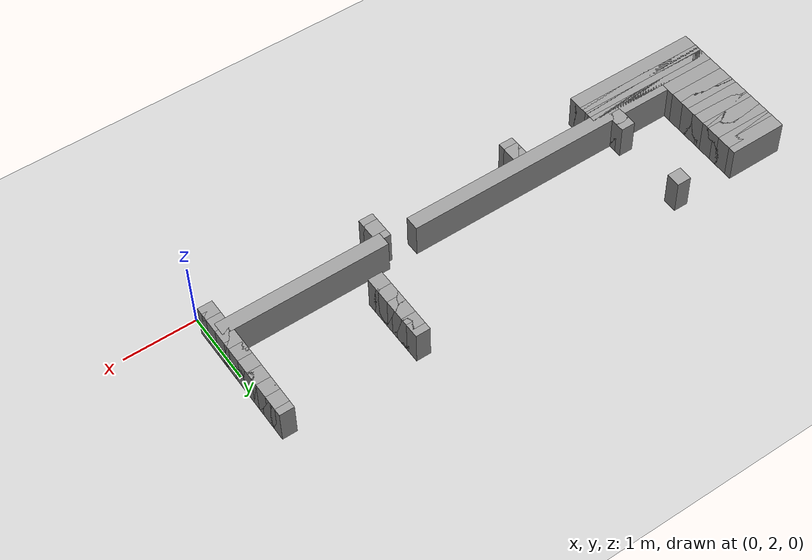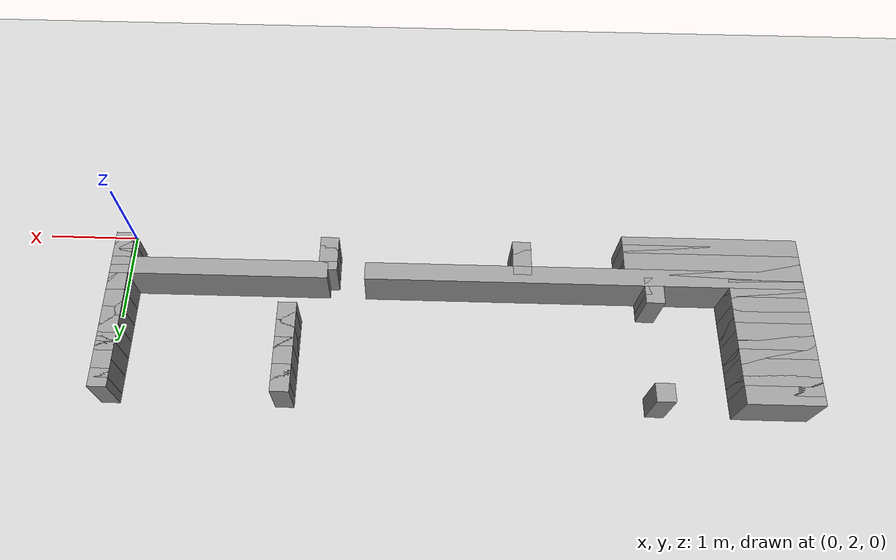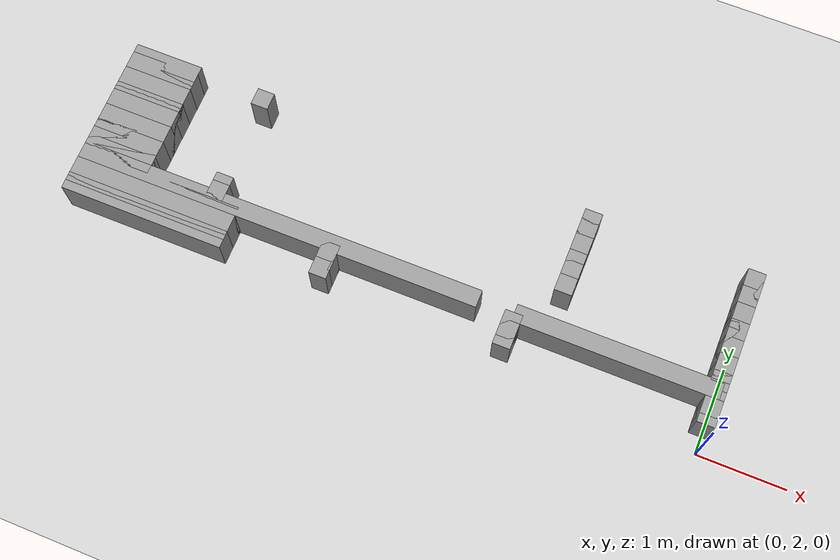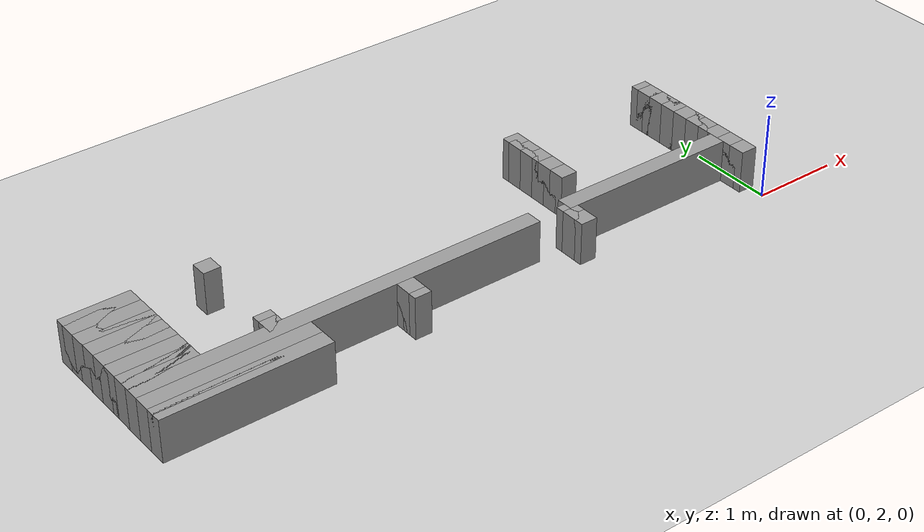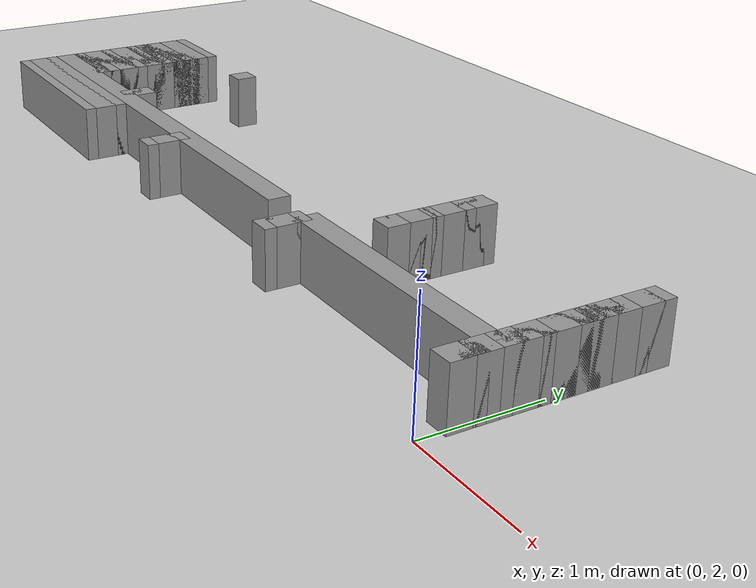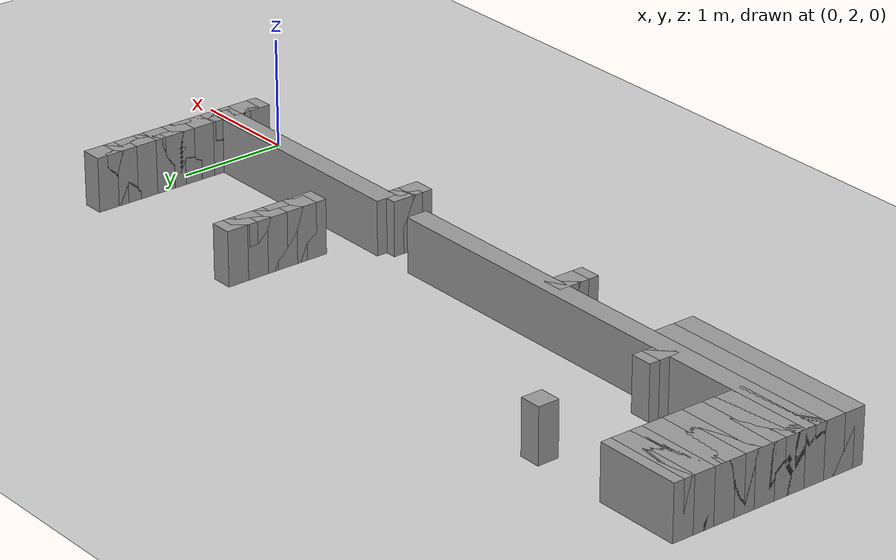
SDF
<sdf version="1.6">
 <world name="GridMap">
  <include><uri>model://sun</uri></include>
  <include><uri>model://ground_plane</uri></include>
  <model name="GridMap">
   <link name="Wall_(64.5,22.0)">
    <collision name="Wall_(64.5,22.0)_Collision">
     <geometry><box><size>1.9000000000000001 0.2 0.5</size></box></geometry>
     <pose>-6.45 2.2 0.25 0 -0 0</pose>
    </collision>
    <inertial>
     <mass>0.5</mass>
     <pose>0 0.01 0 0 0 0</pose>
     <inertia><ixx>0.004</ixx><ixy>0.001</ixy><ixz>0</ixz><iyy>0.006</iyy><iyz>0</iyz><izz>0.007</izz></inertia>
    </inertial>
    <visual name="Wall_(64.5,22.0)_Visual">
     <geometry><box><size>1.9000000000000001 0.2 0.5</size></box></geometry>
     <pose>-6.45 2.2 0.25 0 -0 0</pose>
     <material>
      <script><uri>file://media/materials/scripts/gazebo.material</uri><name>Gazebo/Grey</name></script>
      <ambient>1 1 1 1</ambient>
     </material>
     <meta><layer>0</layer></meta>
    </visual>
   </link>
   <link name="Wall_(0.5,23.0)">
    <collision name="Wall_(0.5,23.0)_Collision">
     <geometry><box><size>0.2 0.2 0.5</size></box></geometry>
     <pose>-0.05 2.3000000000000003 0.25 0 -0 0</pose>
    </collision>
    <inertial>
     <mass>0.5</mass>
     <pose>0 0.01 0 0 0 0</pose>
     <inertia><ixx>0.004</ixx><ixy>0.001</ixy><ixz>0</ixz><iyy>0.006</iyy><iyz>0</iyz><izz>0.007</izz></inertia>
    </inertial>
    <visual name="Wall_(0.5,23.0)_Visual">
     <geometry><box><size>0.2 0.2 0.5</size></box></geometry>
     <pose>-0.05 2.3000000000000003 0.25 0 -0 0</pose>
     <material>
      <script><uri>file://media/materials/scripts/gazebo.material</uri><name>Gazebo/Grey</name></script>
      <ambient>1 1 1 1</ambient>
     </material>
     <meta><layer>0</layer></meta>
    </visual>
   </link>
   <link name="Wall_(23.0,23.0)">
    <collision name="Wall_(23.0,23.0)_Collision">
     <geometry><box><size>0.2 0.2 0.5</size></box></geometry>
     <pose>-2.3000000000000003 2.3000000000000003 0.25 0 -0 0</pose>
    </collision>
    <inertial>
     <mass>0.5</mass>
     <pose>0 0.01 0 0 0 0</pose>
     <inertia><ixx>0.004</ixx><ixy>0.001</ixy><ixz>0</ixz><iyy>0.006</iyy><iyz>0</iyz><izz>0.007</izz></inertia>
    </inertial>
    <visual name="Wall_(23.0,23.0)_Visual">
     <geometry><box><size>0.2 0.2 0.5</size></box></geometry>
     <pose>-2.3000000000000003 2.3000000000000003 0.25 0 -0 0</pose>
     <material>
      <script><uri>file://media/materials/scripts/gazebo.material</uri><name>Gazebo/Grey</name></script>
      <ambient>1 1 1 1</ambient>
     </material>
     <meta><layer>0</layer></meta>
    </visual>
   </link>
   <link name="Wall_(44.0,23.0)">
    <collision name="Wall_(44.0,23.0)_Collision">
     <geometry><box><size>0.2 0.2 0.5</size></box></geometry>
     <pose>-4.4 2.3000000000000003 0.25 0 -0 0</pose>
    </collision>
    <inertial>
     <mass>0.5</mass>
     <pose>0 0.01 0 0 0 0</pose>
     <inertia><ixx>0.004</ixx><ixy>0.001</ixy><ixz>0</ixz><iyy>0.006</iyy><iyz>0</iyz><izz>0.007</izz></inertia>
    </inertial>
    <visual name="Wall_(44.0,23.0)_Visual">
     <geometry><box><size>0.2 0.2 0.5</size></box></geometry>
     <pose>-4.4 2.3000000000000003 0.25 0 -0 0</pose>
     <material>
      <script><uri>file://media/materials/scripts/gazebo.material</uri><name>Gazebo/Grey</name></script>
      <ambient>1 1 1 1</ambient>
     </material>
     <meta><layer>0</layer></meta>
    </visual>
   </link>
   <link name="Wall_(64.5,23.0)">
    <collision name="Wall_(64.5,23.0)_Collision">
     <geometry><box><size>1.9000000000000001 0.2 0.5</size></box></geometry>
     <pose>-6.45 2.3000000000000003 0.25 0 -0 0</pose>
    </collision>
    <inertial>
     <mass>0.5</mass>
     <pose>0 0.01 0 0 0 0</pose>
     <inertia><ixx>0.004</ixx><ixy>0.001</ixy><ixz>0</ixz><iyy>0.006</iyy><iyz>0</iyz><izz>0.007</izz></inertia>
    </inertial>
    <visual name="Wall_(64.5,23.0)_Visual">
     <geometry><box><size>1.9000000000000001 0.2 0.5</size></box></geometry>
     <pose>-6.45 2.3000000000000003 0.25 0 -0 0</pose>
     <material>
      <script><uri>file://media/materials/scripts/gazebo.material</uri><name>Gazebo/Grey</name></script>
      <ambient>1 1 1 1</ambient>
     </material>
     <meta><layer>0</layer></meta>
    </visual>
   </link>
   <link name="Wall_(0.5,24.0)">
    <collision name="Wall_(0.5,24.0)_Collision">
     <geometry><box><size>0.2 0.2 0.5</size></box></geometry>
     <pose>-0.05 2.4000000000000004 0.25 0 -0 0</pose>
    </collision>
    <inertial>
     <mass>0.5</mass>
     <pose>0 0.01 0 0 0 0</pose>
     <inertia><ixx>0.004</ixx><ixy>0.001</ixy><ixz>0</ixz><iyy>0.006</iyy><iyz>0</iyz><izz>0.007</izz></inertia>
    </inertial>
    <visual name="Wall_(0.5,24.0)_Visual">
     <geometry><box><size>0.2 0.2 0.5</size></box></geometry>
     <pose>-0.05 2.4000000000000004 0.25 0 -0 0</pose>
     <material>
      <script><uri>file://media/materials/scripts/gazebo.material</uri><name>Gazebo/Grey</name></script>
      <ambient>1 1 1 1</ambient>
     </material>
     <meta><layer>0</layer></meta>
    </visual>
   </link>
   <link name="Wall_(23.0,24.0)">
    <collision name="Wall_(23.0,24.0)_Collision">
     <geometry><box><size>0.2 0.2 0.5</size></box></geometry>
     <pose>-2.3000000000000003 2.4000000000000004 0.25 0 -0 0</pose>
    </collision>
    <inertial>
     <mass>0.5</mass>
     <pose>0 0.01 0 0 0 0</pose>
     <inertia><ixx>0.004</ixx><ixy>0.001</ixy><ixz>0</ixz><iyy>0.006</iyy><iyz>0</iyz><izz>0.007</izz></inertia>
    </inertial>
    <visual name="Wall_(23.0,24.0)_Visual">
     <geometry><box><size>0.2 0.2 0.5</size></box></geometry>
     <pose>-2.3000000000000003 2.4000000000000004 0.25 0 -0 0</pose>
     <material>
      <script><uri>file://media/materials/scripts/gazebo.material</uri><name>Gazebo/Grey</name></script>
      <ambient>1 1 1 1</ambient>
     </material>
     <meta><layer>0</layer></meta>
    </visual>
   </link>
   <link name="Wall_(44.0,24.0)">
    <collision name="Wall_(44.0,24.0)_Collision">
     <geometry><box><size>0.2 0.2 0.5</size></box></geometry>
     <pose>-4.4 2.4000000000000004 0.25 0 -0 0</pose>
    </collision>
    <inertial>
     <mass>0.5</mass>
     <pose>0 0.01 0 0 0 0</pose>
     <inertia><ixx>0.004</ixx><ixy>0.001</ixy><ixz>0</ixz><iyy>0.006</iyy><iyz>0</iyz><izz>0.007</izz></inertia>
    </inertial>
    <visual name="Wall_(44.0,24.0)_Visual">
     <geometry><box><size>0.2 0.2 0.5</size></box></geometry>
     <pose>-4.4 2.4000000000000004 0.25 0 -0 0</pose>
     <material>
      <script><uri>file://media/materials/scripts/gazebo.material</uri><name>Gazebo/Grey</name></script>
      <ambient>1 1 1 1</ambient>
     </material>
     <meta><layer>0</layer></meta>
    </visual>
   </link>
   <link name="Wall_(64.5,24.0)">
    <collision name="Wall_(64.5,24.0)_Collision">
     <geometry><box><size>1.9000000000000001 0.2 0.5</size></box></geometry>
     <pose>-6.45 2.4000000000000004 0.25 0 -0 0</pose>
    </collision>
    <inertial>
     <mass>0.5</mass>
     <pose>0 0.01 0 0 0 0</pose>
     <inertia><ixx>0.004</ixx><ixy>0.001</ixy><ixz>0</ixz><iyy>0.006</iyy><iyz>0</iyz><izz>0.007</izz></inertia>
    </inertial>
    <visual name="Wall_(64.5,24.0)_Visual">
     <geometry><box><size>1.9000000000000001 0.2 0.5</size></box></geometry>
     <pose>-6.45 2.4000000000000004 0.25 0 -0 0</pose>
     <material>
      <script><uri>file://media/materials/scripts/gazebo.material</uri><name>Gazebo/Grey</name></script>
      <ambient>1 1 1 1</ambient>
     </material>
     <meta><layer>0</layer></meta>
    </visual>
   </link>
   <link name="Wall_(0.5,25.0)">
    <collision name="Wall_(0.5,25.0)_Collision">
     <geometry><box><size>0.2 0.2 0.5</size></box></geometry>
     <pose>-0.05 2.5 0.25 0 -0 0</pose>
    </collision>
    <inertial>
     <mass>0.5</mass>
     <pose>0 0.01 0 0 0 0</pose>
     <inertia><ixx>0.004</ixx><ixy>0.001</ixy><ixz>0</ixz><iyy>0.006</iyy><iyz>0</iyz><izz>0.007</izz></inertia>
    </inertial>
    <visual name="Wall_(0.5,25.0)_Visual">
     <geometry><box><size>0.2 0.2 0.5</size></box></geometry>
     <pose>-0.05 2.5 0.25 0 -0 0</pose>
     <material>
      <script><uri>file://media/materials/scripts/gazebo.material</uri><name>Gazebo/Grey</name></script>
      <ambient>1 1 1 1</ambient>
     </material>
     <meta><layer>0</layer></meta>
    </visual>
   </link>
   <link name="Wall_(23.0,25.0)">
    <collision name="Wall_(23.0,25.0)_Collision">
     <geometry><box><size>0.2 0.2 0.5</size></box></geometry>
     <pose>-2.3000000000000003 2.5 0.25 0 -0 0</pose>
    </collision>
    <inertial>
     <mass>0.5</mass>
     <pose>0 0.01 0 0 0 0</pose>
     <inertia><ixx>0.004</ixx><ixy>0.001</ixy><ixz>0</ixz><iyy>0.006</iyy><iyz>0</iyz><izz>0.007</izz></inertia>
    </inertial>
    <visual name="Wall_(23.0,25.0)_Visual">
     <geometry><box><size>0.2 0.2 0.5</size></box></geometry>
     <pose>-2.3000000000000003 2.5 0.25 0 -0 0</pose>
     <material>
      <script><uri>file://media/materials/scripts/gazebo.material</uri><name>Gazebo/Grey</name></script>
      <ambient>1 1 1 1</ambient>
     </material>
     <meta><layer>0</layer></meta>
    </visual>
   </link>
   <link name="Wall_(44.0,25.0)">
    <collision name="Wall_(44.0,25.0)_Collision">
     <geometry><box><size>0.2 0.2 0.5</size></box></geometry>
     <pose>-4.4 2.5 0.25 0 -0 0</pose>
    </collision>
    <inertial>
     <mass>0.5</mass>
     <pose>0 0.01 0 0 0 0</pose>
     <inertia><ixx>0.004</ixx><ixy>0.001</ixy><ixz>0</ixz><iyy>0.006</iyy><iyz>0</iyz><izz>0.007</izz></inertia>
    </inertial>
    <visual name="Wall_(44.0,25.0)_Visual">
     <geometry><box><size>0.2 0.2 0.5</size></box></geometry>
     <pose>-4.4 2.5 0.25 0 -0 0</pose>
     <material>
      <script><uri>file://media/materials/scripts/gazebo.material</uri><name>Gazebo/Grey</name></script>
      <ambient>1 1 1 1</ambient>
     </material>
     <meta><layer>0</layer></meta>
    </visual>
   </link>
   <link name="Wall_(64.5,25.0)">
    <collision name="Wall_(64.5,25.0)_Collision">
     <geometry><box><size>1.9000000000000001 0.2 0.5</size></box></geometry>
     <pose>-6.45 2.5 0.25 0 -0 0</pose>
    </collision>
    <inertial>
     <mass>0.5</mass>
     <pose>0 0.01 0 0 0 0</pose>
     <inertia><ixx>0.004</ixx><ixy>0.001</ixy><ixz>0</ixz><iyy>0.006</iyy><iyz>0</iyz><izz>0.007</izz></inertia>
    </inertial>
    <visual name="Wall_(64.5,25.0)_Visual">
     <geometry><box><size>1.9000000000000001 0.2 0.5</size></box></geometry>
     <pose>-6.45 2.5 0.25 0 -0 0</pose>
     <material>
      <script><uri>file://media/materials/scripts/gazebo.material</uri><name>Gazebo/Grey</name></script>
      <ambient>1 1 1 1</ambient>
     </material>
     <meta><layer>0</layer></meta>
    </visual>
   </link>
   <link name="Wall_(11.5,26.0)">
    <collision name="Wall_(11.5,26.0)_Collision">
     <geometry><box><size>2.3000000000000003 0.2 0.5</size></box></geometry>
     <pose>-1.1500000000000001 2.6 0.25 0 -0 0</pose>
    </collision>
    <inertial>
     <mass>0.5</mass>
     <pose>0 0.01 0 0 0 0</pose>
     <inertia><ixx>0.004</ixx><ixy>0.001</ixy><ixz>0</ixz><iyy>0.006</iyy><iyz>0</iyz><izz>0.007</izz></inertia>
    </inertial>
    <visual name="Wall_(11.5,26.0)_Visual">
     <geometry><box><size>2.3000000000000003 0.2 0.5</size></box></geometry>
     <pose>-1.1500000000000001 2.6 0.25 0 -0 0</pose>
     <material>
      <script><uri>file://media/materials/scripts/gazebo.material</uri><name>Gazebo/Grey</name></script>
      <ambient>1 1 1 1</ambient>
     </material>
     <meta><layer>0</layer></meta>
    </visual>
   </link>
   <link name="Wall_(50.5,26.0)">
    <collision name="Wall_(50.5,26.0)_Collision">
     <geometry><box><size>4.7 0.2 0.5</size></box></geometry>
     <pose>-5.050000000000001 2.6 0.25 0 -0 0</pose>
    </collision>
    <inertial>
     <mass>0.5</mass>
     <pose>0 0.01 0 0 0 0</pose>
     <inertia><ixx>0.004</ixx><ixy>0.001</ixy><ixz>0</ixz><iyy>0.006</iyy><iyz>0</iyz><izz>0.007</izz></inertia>
    </inertial>
    <visual name="Wall_(50.5,26.0)_Visual">
     <geometry><box><size>4.7 0.2 0.5</size></box></geometry>
     <pose>-5.050000000000001 2.6 0.25 0 -0 0</pose>
     <material>
      <script><uri>file://media/materials/scripts/gazebo.material</uri><name>Gazebo/Grey</name></script>
      <ambient>1 1 1 1</ambient>
     </material>
     <meta><layer>0</layer></meta>
    </visual>
   </link>
   <link name="Wall_(0.5,27.0)">
    <collision name="Wall_(0.5,27.0)_Collision">
     <geometry><box><size>0.2 0.2 0.5</size></box></geometry>
     <pose>-0.05 2.7 0.25 0 -0 0</pose>
    </collision>
    <inertial>
     <mass>0.5</mass>
     <pose>0 0.01 0 0 0 0</pose>
     <inertia><ixx>0.004</ixx><ixy>0.001</ixy><ixz>0</ixz><iyy>0.006</iyy><iyz>0</iyz><izz>0.007</izz></inertia>
    </inertial>
    <visual name="Wall_(0.5,27.0)_Visual">
     <geometry><box><size>0.2 0.2 0.5</size></box></geometry>
     <pose>-0.05 2.7 0.25 0 -0 0</pose>
     <material>
      <script><uri>file://media/materials/scripts/gazebo.material</uri><name>Gazebo/Grey</name></script>
      <ambient>1 1 1 1</ambient>
     </material>
     <meta><layer>0</layer></meta>
    </visual>
   </link>
   <link name="Wall_(58.0,27.0)">
    <collision name="Wall_(58.0,27.0)_Collision">
     <geometry><box><size>0.2 0.2 0.5</size></box></geometry>
     <pose>-5.800000000000001 2.7 0.25 0 -0 0</pose>
    </collision>
    <inertial>
     <mass>0.5</mass>
     <pose>0 0.01 0 0 0 0</pose>
     <inertia><ixx>0.004</ixx><ixy>0.001</ixy><ixz>0</ixz><iyy>0.006</iyy><iyz>0</iyz><izz>0.007</izz></inertia>
    </inertial>
    <visual name="Wall_(58.0,27.0)_Visual">
     <geometry><box><size>0.2 0.2 0.5</size></box></geometry>
     <pose>-5.800000000000001 2.7 0.25 0 -0 0</pose>
     <material>
      <script><uri>file://media/materials/scripts/gazebo.material</uri><name>Gazebo/Grey</name></script>
      <ambient>1 1 1 1</ambient>
     </material>
     <meta><layer>0</layer></meta>
    </visual>
   </link>
   <link name="Wall_(70.0,27.0)">
    <collision name="Wall_(70.0,27.0)_Collision">
     <geometry><box><size>0.8 0.2 0.5</size></box></geometry>
     <pose>-7.0 2.7 0.25 0 -0 0</pose>
    </collision>
    <inertial>
     <mass>0.5</mass>
     <pose>0 0.01 0 0 0 0</pose>
     <inertia><ixx>0.004</ixx><ixy>0.001</ixy><ixz>0</ixz><iyy>0.006</iyy><iyz>0</iyz><izz>0.007</izz></inertia>
    </inertial>
    <visual name="Wall_(70.0,27.0)_Visual">
     <geometry><box><size>0.8 0.2 0.5</size></box></geometry>
     <pose>-7.0 2.7 0.25 0 -0 0</pose>
     <material>
      <script><uri>file://media/materials/scripts/gazebo.material</uri><name>Gazebo/Grey</name></script>
      <ambient>1 1 1 1</ambient>
     </material>
     <meta><layer>0</layer></meta>
    </visual>
   </link>
   <link name="Wall_(0.5,28.0)">
    <collision name="Wall_(0.5,28.0)_Collision">
     <geometry><box><size>0.2 0.2 0.5</size></box></geometry>
     <pose>-0.05 2.8000000000000003 0.25 0 -0 0</pose>
    </collision>
    <inertial>
     <mass>0.5</mass>
     <pose>0 0.01 0 0 0 0</pose>
     <inertia><ixx>0.004</ixx><ixy>0.001</ixy><ixz>0</ixz><iyy>0.006</iyy><iyz>0</iyz><izz>0.007</izz></inertia>
    </inertial>
    <visual name="Wall_(0.5,28.0)_Visual">
     <geometry><box><size>0.2 0.2 0.5</size></box></geometry>
     <pose>-0.05 2.8000000000000003 0.25 0 -0 0</pose>
     <material>
      <script><uri>file://media/materials/scripts/gazebo.material</uri><name>Gazebo/Grey</name></script>
      <ambient>1 1 1 1</ambient>
     </material>
     <meta><layer>0</layer></meta>
    </visual>
   </link>
   <link name="Wall_(58.0,28.0)">
    <collision name="Wall_(58.0,28.0)_Collision">
     <geometry><box><size>0.2 0.2 0.5</size></box></geometry>
     <pose>-5.800000000000001 2.8000000000000003 0.25 0 -0 0</pose>
    </collision>
    <inertial>
     <mass>0.5</mass>
     <pose>0 0.01 0 0 0 0</pose>
     <inertia><ixx>0.004</ixx><ixy>0.001</ixy><ixz>0</ixz><iyy>0.006</iyy><iyz>0</iyz><izz>0.007</izz></inertia>
    </inertial>
    <visual name="Wall_(58.0,28.0)_Visual">
     <geometry><box><size>0.2 0.2 0.5</size></box></geometry>
     <pose>-5.800000000000001 2.8000000000000003 0.25 0 -0 0</pose>
     <material>
      <script><uri>file://media/materials/scripts/gazebo.material</uri><name>Gazebo/Grey</name></script>
      <ambient>1 1 1 1</ambient>
     </material>
     <meta><layer>0</layer></meta>
    </visual>
   </link>
   <link name="Wall_(70.0,28.0)">
    <collision name="Wall_(70.0,28.0)_Collision">
     <geometry><box><size>0.8 0.2 0.5</size></box></geometry>
     <pose>-7.0 2.8000000000000003 0.25 0 -0 0</pose>
    </collision>
    <inertial>
     <mass>0.5</mass>
     <pose>0 0.01 0 0 0 0</pose>
     <inertia><ixx>0.004</ixx><ixy>0.001</ixy><ixz>0</ixz><iyy>0.006</iyy><iyz>0</iyz><izz>0.007</izz></inertia>
    </inertial>
    <visual name="Wall_(70.0,28.0)_Visual">
     <geometry><box><size>0.8 0.2 0.5</size></box></geometry>
     <pose>-7.0 2.8000000000000003 0.25 0 -0 0</pose>
     <material>
      <script><uri>file://media/materials/scripts/gazebo.material</uri><name>Gazebo/Grey</name></script>
      <ambient>1 1 1 1</ambient>
     </material>
     <meta><layer>0</layer></meta>
    </visual>
   </link>
   <link name="Wall_(0.5,29.0)">
    <collision name="Wall_(0.5,29.0)_Collision">
     <geometry><box><size>0.2 0.2 0.5</size></box></geometry>
     <pose>-0.05 2.9000000000000004 0.25 0 -0 0</pose>
    </collision>
    <inertial>
     <mass>0.5</mass>
     <pose>0 0.01 0 0 0 0</pose>
     <inertia><ixx>0.004</ixx><ixy>0.001</ixy><ixz>0</ixz><iyy>0.006</iyy><iyz>0</iyz><izz>0.007</izz></inertia>
    </inertial>
    <visual name="Wall_(0.5,29.0)_Visual">
     <geometry><box><size>0.2 0.2 0.5</size></box></geometry>
     <pose>-0.05 2.9000000000000004 0.25 0 -0 0</pose>
     <material>
      <script><uri>file://media/materials/scripts/gazebo.material</uri><name>Gazebo/Grey</name></script>
      <ambient>1 1 1 1</ambient>
     </material>
     <meta><layer>0</layer></meta>
    </visual>
   </link>
   <link name="Wall_(70.0,29.0)">
    <collision name="Wall_(70.0,29.0)_Collision">
     <geometry><box><size>0.8 0.2 0.5</size></box></geometry>
     <pose>-7.0 2.9000000000000004 0.25 0 -0 0</pose>
    </collision>
    <inertial>
     <mass>0.5</mass>
     <pose>0 0.01 0 0 0 0</pose>
     <inertia><ixx>0.004</ixx><ixy>0.001</ixy><ixz>0</ixz><iyy>0.006</iyy><iyz>0</iyz><izz>0.007</izz></inertia>
    </inertial>
    <visual name="Wall_(70.0,29.0)_Visual">
     <geometry><box><size>0.8 0.2 0.5</size></box></geometry>
     <pose>-7.0 2.9000000000000004 0.25 0 -0 0</pose>
     <material>
      <script><uri>file://media/materials/scripts/gazebo.material</uri><name>Gazebo/Grey</name></script>
      <ambient>1 1 1 1</ambient>
     </material>
     <meta><layer>0</layer></meta>
    </visual>
   </link>
   <link name="Wall_(0.5,30.0)">
    <collision name="Wall_(0.5,30.0)_Collision">
     <geometry><box><size>0.2 0.2 0.5</size></box></geometry>
     <pose>-0.05 3.0 0.25 0 -0 0</pose>
    </collision>
    <inertial>
     <mass>0.5</mass>
     <pose>0 0.01 0 0 0 0</pose>
     <inertia><ixx>0.004</ixx><ixy>0.001</ixy><ixz>0</ixz><iyy>0.006</iyy><iyz>0</iyz><izz>0.007</izz></inertia>
    </inertial>
    <visual name="Wall_(0.5,30.0)_Visual">
     <geometry><box><size>0.2 0.2 0.5</size></box></geometry>
     <pose>-0.05 3.0 0.25 0 -0 0</pose>
     <material>
      <script><uri>file://media/materials/scripts/gazebo.material</uri><name>Gazebo/Grey</name></script>
      <ambient>1 1 1 1</ambient>
     </material>
     <meta><layer>0</layer></meta>
    </visual>
   </link>
   <link name="Wall_(70.0,30.0)">
    <collision name="Wall_(70.0,30.0)_Collision">
     <geometry><box><size>0.8 0.2 0.5</size></box></geometry>
     <pose>-7.0 3.0 0.25 0 -0 0</pose>
    </collision>
    <inertial>
     <mass>0.5</mass>
     <pose>0 0.01 0 0 0 0</pose>
     <inertia><ixx>0.004</ixx><ixy>0.001</ixy><ixz>0</ixz><iyy>0.006</iyy><iyz>0</iyz><izz>0.007</izz></inertia>
    </inertial>
    <visual name="Wall_(70.0,30.0)_Visual">
     <geometry><box><size>0.8 0.2 0.5</size></box></geometry>
     <pose>-7.0 3.0 0.25 0 -0 0</pose>
     <material>
      <script><uri>file://media/materials/scripts/gazebo.material</uri><name>Gazebo/Grey</name></script>
      <ambient>1 1 1 1</ambient>
     </material>
     <meta><layer>0</layer></meta>
    </visual>
   </link>
   <link name="Wall_(0.5,31.0)">
    <collision name="Wall_(0.5,31.0)_Collision">
     <geometry><box><size>0.2 0.2 0.5</size></box></geometry>
     <pose>-0.05 3.1 0.25 0 -0 0</pose>
    </collision>
    <inertial>
     <mass>0.5</mass>
     <pose>0 0.01 0 0 0 0</pose>
     <inertia><ixx>0.004</ixx><ixy>0.001</ixy><ixz>0</ixz><iyy>0.006</iyy><iyz>0</iyz><izz>0.007</izz></inertia>
    </inertial>
    <visual name="Wall_(0.5,31.0)_Visual">
     <geometry><box><size>0.2 0.2 0.5</size></box></geometry>
     <pose>-0.05 3.1 0.25 0 -0 0</pose>
     <material>
      <script><uri>file://media/materials/scripts/gazebo.material</uri><name>Gazebo/Grey</name></script>
      <ambient>1 1 1 1</ambient>
     </material>
     <meta><layer>0</layer></meta>
    </visual>
   </link>
   <link name="Wall_(19.0,31.0)">
    <collision name="Wall_(19.0,31.0)_Collision">
     <geometry><box><size>0.2 0.2 0.5</size></box></geometry>
     <pose>-1.9000000000000001 3.1 0.25 0 -0 0</pose>
    </collision>
    <inertial>
     <mass>0.5</mass>
     <pose>0 0.01 0 0 0 0</pose>
     <inertia><ixx>0.004</ixx><ixy>0.001</ixy><ixz>0</ixz><iyy>0.006</iyy><iyz>0</iyz><izz>0.007</izz></inertia>
    </inertial>
    <visual name="Wall_(19.0,31.0)_Visual">
     <geometry><box><size>0.2 0.2 0.5</size></box></geometry>
     <pose>-1.9000000000000001 3.1 0.25 0 -0 0</pose>
     <material>
      <script><uri>file://media/materials/scripts/gazebo.material</uri><name>Gazebo/Grey</name></script>
      <ambient>1 1 1 1</ambient>
     </material>
     <meta><layer>0</layer></meta>
    </visual>
   </link>
   <link name="Wall_(70.0,31.0)">
    <collision name="Wall_(70.0,31.0)_Collision">
     <geometry><box><size>0.8 0.2 0.5</size></box></geometry>
     <pose>-7.0 3.1 0.25 0 -0 0</pose>
    </collision>
    <inertial>
     <mass>0.5</mass>
     <pose>0 0.01 0 0 0 0</pose>
     <inertia><ixx>0.004</ixx><ixy>0.001</ixy><ixz>0</ixz><iyy>0.006</iyy><iyz>0</iyz><izz>0.007</izz></inertia>
    </inertial>
    <visual name="Wall_(70.0,31.0)_Visual">
     <geometry><box><size>0.8 0.2 0.5</size></box></geometry>
     <pose>-7.0 3.1 0.25 0 -0 0</pose>
     <material>
      <script><uri>file://media/materials/scripts/gazebo.material</uri><name>Gazebo/Grey</name></script>
      <ambient>1 1 1 1</ambient>
     </material>
     <meta><layer>0</layer></meta>
    </visual>
   </link>
   <link name="Wall_(0.5,32.0)">
    <collision name="Wall_(0.5,32.0)_Collision">
     <geometry><box><size>0.2 0.2 0.5</size></box></geometry>
     <pose>-0.05 3.2 0.25 0 -0 0</pose>
    </collision>
    <inertial>
     <mass>0.5</mass>
     <pose>0 0.01 0 0 0 0</pose>
     <inertia><ixx>0.004</ixx><ixy>0.001</ixy><ixz>0</ixz><iyy>0.006</iyy><iyz>0</iyz><izz>0.007</izz></inertia>
    </inertial>
    <visual name="Wall_(0.5,32.0)_Visual">
     <geometry><box><size>0.2 0.2 0.5</size></box></geometry>
     <pose>-0.05 3.2 0.25 0 -0 0</pose>
     <material>
      <script><uri>file://media/materials/scripts/gazebo.material</uri><name>Gazebo/Grey</name></script>
      <ambient>1 1 1 1</ambient>
     </material>
     <meta><layer>0</layer></meta>
    </visual>
   </link>
   <link name="Wall_(19.0,32.0)">
    <collision name="Wall_(19.0,32.0)_Collision">
     <geometry><box><size>0.2 0.2 0.5</size></box></geometry>
     <pose>-1.9000000000000001 3.2 0.25 0 -0 0</pose>
    </collision>
    <inertial>
     <mass>0.5</mass>
     <pose>0 0.01 0 0 0 0</pose>
     <inertia><ixx>0.004</ixx><ixy>0.001</ixy><ixz>0</ixz><iyy>0.006</iyy><iyz>0</iyz><izz>0.007</izz></inertia>
    </inertial>
    <visual name="Wall_(19.0,32.0)_Visual">
     <geometry><box><size>0.2 0.2 0.5</size></box></geometry>
     <pose>-1.9000000000000001 3.2 0.25 0 -0 0</pose>
     <material>
      <script><uri>file://media/materials/scripts/gazebo.material</uri><name>Gazebo/Grey</name></script>
      <ambient>1 1 1 1</ambient>
     </material>
     <meta><layer>0</layer></meta>
    </visual>
   </link>
   <link name="Wall_(70.0,32.0)">
    <collision name="Wall_(70.0,32.0)_Collision">
     <geometry><box><size>0.8 0.2 0.5</size></box></geometry>
     <pose>-7.0 3.2 0.25 0 -0 0</pose>
    </collision>
    <inertial>
     <mass>0.5</mass>
     <pose>0 0.01 0 0 0 0</pose>
     <inertia><ixx>0.004</ixx><ixy>0.001</ixy><ixz>0</ixz><iyy>0.006</iyy><iyz>0</iyz><izz>0.007</izz></inertia>
    </inertial>
    <visual name="Wall_(70.0,32.0)_Visual">
     <geometry><box><size>0.8 0.2 0.5</size></box></geometry>
     <pose>-7.0 3.2 0.25 0 -0 0</pose>
     <material>
      <script><uri>file://media/materials/scripts/gazebo.material</uri><name>Gazebo/Grey</name></script>
      <ambient>1 1 1 1</ambient>
     </material>
     <meta><layer>0</layer></meta>
    </visual>
   </link>
   <link name="Wall_(0.5,33.0)">
    <collision name="Wall_(0.5,33.0)_Collision">
     <geometry><box><size>0.2 0.2 0.5</size></box></geometry>
     <pose>-0.05 3.3000000000000003 0.25 0 -0 0</pose>
    </collision>
    <inertial>
     <mass>0.5</mass>
     <pose>0 0.01 0 0 0 0</pose>
     <inertia><ixx>0.004</ixx><ixy>0.001</ixy><ixz>0</ixz><iyy>0.006</iyy><iyz>0</iyz><izz>0.007</izz></inertia>
    </inertial>
    <visual name="Wall_(0.5,33.0)_Visual">
     <geometry><box><size>0.2 0.2 0.5</size></box></geometry>
     <pose>-0.05 3.3000000000000003 0.25 0 -0 0</pose>
     <material>
      <script><uri>file://media/materials/scripts/gazebo.material</uri><name>Gazebo/Grey</name></script>
      <ambient>1 1 1 1</ambient>
     </material>
     <meta><layer>0</layer></meta>
    </visual>
   </link>
   <link name="Wall_(19.0,33.0)">
    <collision name="Wall_(19.0,33.0)_Collision">
     <geometry><box><size>0.2 0.2 0.5</size></box></geometry>
     <pose>-1.9000000000000001 3.3000000000000003 0.25 0 -0 0</pose>
    </collision>
    <inertial>
     <mass>0.5</mass>
     <pose>0 0.01 0 0 0 0</pose>
     <inertia><ixx>0.004</ixx><ixy>0.001</ixy><ixz>0</ixz><iyy>0.006</iyy><iyz>0</iyz><izz>0.007</izz></inertia>
    </inertial>
    <visual name="Wall_(19.0,33.0)_Visual">
     <geometry><box><size>0.2 0.2 0.5</size></box></geometry>
     <pose>-1.9000000000000001 3.3000000000000003 0.25 0 -0 0</pose>
     <material>
      <script><uri>file://media/materials/scripts/gazebo.material</uri><name>Gazebo/Grey</name></script>
      <ambient>1 1 1 1</ambient>
     </material>
     <meta><layer>0</layer></meta>
    </visual>
   </link>
   <link name="Wall_(70.0,33.0)">
    <collision name="Wall_(70.0,33.0)_Collision">
     <geometry><box><size>0.8 0.2 0.5</size></box></geometry>
     <pose>-7.0 3.3000000000000003 0.25 0 -0 0</pose>
    </collision>
    <inertial>
     <mass>0.5</mass>
     <pose>0 0.01 0 0 0 0</pose>
     <inertia><ixx>0.004</ixx><ixy>0.001</ixy><ixz>0</ixz><iyy>0.006</iyy><iyz>0</iyz><izz>0.007</izz></inertia>
    </inertial>
    <visual name="Wall_(70.0,33.0)_Visual">
     <geometry><box><size>0.8 0.2 0.5</size></box></geometry>
     <pose>-7.0 3.3000000000000003 0.25 0 -0 0</pose>
     <material>
      <script><uri>file://media/materials/scripts/gazebo.material</uri><name>Gazebo/Grey</name></script>
      <ambient>1 1 1 1</ambient>
     </material>
     <meta><layer>0</layer></meta>
    </visual>
   </link>
   <link name="Wall_(0.5,34.0)">
    <collision name="Wall_(0.5,34.0)_Collision">
     <geometry><box><size>0.2 0.2 0.5</size></box></geometry>
     <pose>-0.05 3.4000000000000004 0.25 0 -0 0</pose>
    </collision>
    <inertial>
     <mass>0.5</mass>
     <pose>0 0.01 0 0 0 0</pose>
     <inertia><ixx>0.004</ixx><ixy>0.001</ixy><ixz>0</ixz><iyy>0.006</iyy><iyz>0</iyz><izz>0.007</izz></inertia>
    </inertial>
    <visual name="Wall_(0.5,34.0)_Visual">
     <geometry><box><size>0.2 0.2 0.5</size></box></geometry>
     <pose>-0.05 3.4000000000000004 0.25 0 -0 0</pose>
     <material>
      <script><uri>file://media/materials/scripts/gazebo.material</uri><name>Gazebo/Grey</name></script>
      <ambient>1 1 1 1</ambient>
     </material>
     <meta><layer>0</layer></meta>
    </visual>
   </link>
   <link name="Wall_(19.0,34.0)">
    <collision name="Wall_(19.0,34.0)_Collision">
     <geometry><box><size>0.2 0.2 0.5</size></box></geometry>
     <pose>-1.9000000000000001 3.4000000000000004 0.25 0 -0 0</pose>
    </collision>
    <inertial>
     <mass>0.5</mass>
     <pose>0 0.01 0 0 0 0</pose>
     <inertia><ixx>0.004</ixx><ixy>0.001</ixy><ixz>0</ixz><iyy>0.006</iyy><iyz>0</iyz><izz>0.007</izz></inertia>
    </inertial>
    <visual name="Wall_(19.0,34.0)_Visual">
     <geometry><box><size>0.2 0.2 0.5</size></box></geometry>
     <pose>-1.9000000000000001 3.4000000000000004 0.25 0 -0 0</pose>
     <material>
      <script><uri>file://media/materials/scripts/gazebo.material</uri><name>Gazebo/Grey</name></script>
      <ambient>1 1 1 1</ambient>
     </material>
     <meta><layer>0</layer></meta>
    </visual>
   </link>
   <link name="Wall_(70.0,34.0)">
    <collision name="Wall_(70.0,34.0)_Collision">
     <geometry><box><size>0.8 0.2 0.5</size></box></geometry>
     <pose>-7.0 3.4000000000000004 0.25 0 -0 0</pose>
    </collision>
    <inertial>
     <mass>0.5</mass>
     <pose>0 0.01 0 0 0 0</pose>
     <inertia><ixx>0.004</ixx><ixy>0.001</ixy><ixz>0</ixz><iyy>0.006</iyy><iyz>0</iyz><izz>0.007</izz></inertia>
    </inertial>
    <visual name="Wall_(70.0,34.0)_Visual">
     <geometry><box><size>0.8 0.2 0.5</size></box></geometry>
     <pose>-7.0 3.4000000000000004 0.25 0 -0 0</pose>
     <material>
      <script><uri>file://media/materials/scripts/gazebo.material</uri><name>Gazebo/Grey</name></script>
      <ambient>1 1 1 1</ambient>
     </material>
     <meta><layer>0</layer></meta>
    </visual>
   </link>
   <link name="Wall_(0.5,35.0)">
    <collision name="Wall_(0.5,35.0)_Collision">
     <geometry><box><size>0.2 0.2 0.5</size></box></geometry>
     <pose>-0.05 3.5 0.25 0 -0 0</pose>
    </collision>
    <inertial>
     <mass>0.5</mass>
     <pose>0 0.01 0 0 0 0</pose>
     <inertia><ixx>0.004</ixx><ixy>0.001</ixy><ixz>0</ixz><iyy>0.006</iyy><iyz>0</iyz><izz>0.007</izz></inertia>
    </inertial>
    <visual name="Wall_(0.5,35.0)_Visual">
     <geometry><box><size>0.2 0.2 0.5</size></box></geometry>
     <pose>-0.05 3.5 0.25 0 -0 0</pose>
     <material>
      <script><uri>file://media/materials/scripts/gazebo.material</uri><name>Gazebo/Grey</name></script>
      <ambient>1 1 1 1</ambient>
     </material>
     <meta><layer>0</layer></meta>
    </visual>
   </link>
   <link name="Wall_(19.0,35.0)">
    <collision name="Wall_(19.0,35.0)_Collision">
     <geometry><box><size>0.2 0.2 0.5</size></box></geometry>
     <pose>-1.9000000000000001 3.5 0.25 0 -0 0</pose>
    </collision>
    <inertial>
     <mass>0.5</mass>
     <pose>0 0.01 0 0 0 0</pose>
     <inertia><ixx>0.004</ixx><ixy>0.001</ixy><ixz>0</ixz><iyy>0.006</iyy><iyz>0</iyz><izz>0.007</izz></inertia>
    </inertial>
    <visual name="Wall_(19.0,35.0)_Visual">
     <geometry><box><size>0.2 0.2 0.5</size></box></geometry>
     <pose>-1.9000000000000001 3.5 0.25 0 -0 0</pose>
     <material>
      <script><uri>file://media/materials/scripts/gazebo.material</uri><name>Gazebo/Grey</name></script>
      <ambient>1 1 1 1</ambient>
     </material>
     <meta><layer>0</layer></meta>
    </visual>
   </link>
   <link name="Wall_(70.0,35.0)">
    <collision name="Wall_(70.0,35.0)_Collision">
     <geometry><box><size>0.8 0.2 0.5</size></box></geometry>
     <pose>-7.0 3.5 0.25 0 -0 0</pose>
    </collision>
    <inertial>
     <mass>0.5</mass>
     <pose>0 0.01 0 0 0 0</pose>
     <inertia><ixx>0.004</ixx><ixy>0.001</ixy><ixz>0</ixz><iyy>0.006</iyy><iyz>0</iyz><izz>0.007</izz></inertia>
    </inertial>
    <visual name="Wall_(70.0,35.0)_Visual">
     <geometry><box><size>0.8 0.2 0.5</size></box></geometry>
     <pose>-7.0 3.5 0.25 0 -0 0</pose>
     <material>
      <script><uri>file://media/materials/scripts/gazebo.material</uri><name>Gazebo/Grey</name></script>
      <ambient>1 1 1 1</ambient>
     </material>
     <meta><layer>0</layer></meta>
    </visual>
   </link>
   <link name="Wall_(0.5,36.0)">
    <collision name="Wall_(0.5,36.0)_Collision">
     <geometry><box><size>0.2 0.2 0.5</size></box></geometry>
     <pose>-0.05 3.6 0.25 0 -0 0</pose>
    </collision>
    <inertial>
     <mass>0.5</mass>
     <pose>0 0.01 0 0 0 0</pose>
     <inertia><ixx>0.004</ixx><ixy>0.001</ixy><ixz>0</ixz><iyy>0.006</iyy><iyz>0</iyz><izz>0.007</izz></inertia>
    </inertial>
    <visual name="Wall_(0.5,36.0)_Visual">
     <geometry><box><size>0.2 0.2 0.5</size></box></geometry>
     <pose>-0.05 3.6 0.25 0 -0 0</pose>
     <material>
      <script><uri>file://media/materials/scripts/gazebo.material</uri><name>Gazebo/Grey</name></script>
      <ambient>1 1 1 1</ambient>
     </material>
     <meta><layer>0</layer></meta>
    </visual>
   </link>
   <link name="Wall_(19.0,36.0)">
    <collision name="Wall_(19.0,36.0)_Collision">
     <geometry><box><size>0.2 0.2 0.5</size></box></geometry>
     <pose>-1.9000000000000001 3.6 0.25 0 -0 0</pose>
    </collision>
    <inertial>
     <mass>0.5</mass>
     <pose>0 0.01 0 0 0 0</pose>
     <inertia><ixx>0.004</ixx><ixy>0.001</ixy><ixz>0</ixz><iyy>0.006</iyy><iyz>0</iyz><izz>0.007</izz></inertia>
    </inertial>
    <visual name="Wall_(19.0,36.0)_Visual">
     <geometry><box><size>0.2 0.2 0.5</size></box></geometry>
     <pose>-1.9000000000000001 3.6 0.25 0 -0 0</pose>
     <material>
      <script><uri>file://media/materials/scripts/gazebo.material</uri><name>Gazebo/Grey</name></script>
      <ambient>1 1 1 1</ambient>
     </material>
     <meta><layer>0</layer></meta>
    </visual>
   </link>
   <link name="Wall_(70.0,36.0)">
    <collision name="Wall_(70.0,36.0)_Collision">
     <geometry><box><size>0.8 0.2 0.5</size></box></geometry>
     <pose>-7.0 3.6 0.25 0 -0 0</pose>
    </collision>
    <inertial>
     <mass>0.5</mass>
     <pose>0 0.01 0 0 0 0</pose>
     <inertia><ixx>0.004</ixx><ixy>0.001</ixy><ixz>0</ixz><iyy>0.006</iyy><iyz>0</iyz><izz>0.007</izz></inertia>
    </inertial>
    <visual name="Wall_(70.0,36.0)_Visual">
     <geometry><box><size>0.8 0.2 0.5</size></box></geometry>
     <pose>-7.0 3.6 0.25 0 -0 0</pose>
     <material>
      <script><uri>file://media/materials/scripts/gazebo.material</uri><name>Gazebo/Grey</name></script>
      <ambient>1 1 1 1</ambient>
     </material>
     <meta><layer>0</layer></meta>
    </visual>
   </link>
   <link name="Wall_(0.5,37.0)">
    <collision name="Wall_(0.5,37.0)_Collision">
     <geometry><box><size>0.2 0.2 0.5</size></box></geometry>
     <pose>-0.05 3.7 0.25 0 -0 0</pose>
    </collision>
    <inertial>
     <mass>0.5</mass>
     <pose>0 0.01 0 0 0 0</pose>
     <inertia><ixx>0.004</ixx><ixy>0.001</ixy><ixz>0</ixz><iyy>0.006</iyy><iyz>0</iyz><izz>0.007</izz></inertia>
    </inertial>
    <visual name="Wall_(0.5,37.0)_Visual">
     <geometry><box><size>0.2 0.2 0.5</size></box></geometry>
     <pose>-0.05 3.7 0.25 0 -0 0</pose>
     <material>
      <script><uri>file://media/materials/scripts/gazebo.material</uri><name>Gazebo/Grey</name></script>
      <ambient>1 1 1 1</ambient>
     </material>
     <meta><layer>0</layer></meta>
    </visual>
   </link>
   <link name="Wall_(19.0,37.0)">
    <collision name="Wall_(19.0,37.0)_Collision">
     <geometry><box><size>0.2 0.2 0.5</size></box></geometry>
     <pose>-1.9000000000000001 3.7 0.25 0 -0 0</pose>
    </collision>
    <inertial>
     <mass>0.5</mass>
     <pose>0 0.01 0 0 0 0</pose>
     <inertia><ixx>0.004</ixx><ixy>0.001</ixy><ixz>0</ixz><iyy>0.006</iyy><iyz>0</iyz><izz>0.007</izz></inertia>
    </inertial>
    <visual name="Wall_(19.0,37.0)_Visual">
     <geometry><box><size>0.2 0.2 0.5</size></box></geometry>
     <pose>-1.9000000000000001 3.7 0.25 0 -0 0</pose>
     <material>
      <script><uri>file://media/materials/scripts/gazebo.material</uri><name>Gazebo/Grey</name></script>
      <ambient>1 1 1 1</ambient>
     </material>
     <meta><layer>0</layer></meta>
    </visual>
   </link>
   <link name="Wall_(70.0,37.0)">
    <collision name="Wall_(70.0,37.0)_Collision">
     <geometry><box><size>0.8 0.2 0.5</size></box></geometry>
     <pose>-7.0 3.7 0.25 0 -0 0</pose>
    </collision>
    <inertial>
     <mass>0.5</mass>
     <pose>0 0.01 0 0 0 0</pose>
     <inertia><ixx>0.004</ixx><ixy>0.001</ixy><ixz>0</ixz><iyy>0.006</iyy><iyz>0</iyz><izz>0.007</izz></inertia>
    </inertial>
    <visual name="Wall_(70.0,37.0)_Visual">
     <geometry><box><size>0.8 0.2 0.5</size></box></geometry>
     <pose>-7.0 3.7 0.25 0 -0 0</pose>
     <material>
      <script><uri>file://media/materials/scripts/gazebo.material</uri><name>Gazebo/Grey</name></script>
      <ambient>1 1 1 1</ambient>
     </material>
     <meta><layer>0</layer></meta>
    </visual>
   </link>
   <link name="Wall_(0.5,38.0)">
    <collision name="Wall_(0.5,38.0)_Collision">
     <geometry><box><size>0.2 0.2 0.5</size></box></geometry>
     <pose>-0.05 3.8000000000000003 0.25 0 -0 0</pose>
    </collision>
    <inertial>
     <mass>0.5</mass>
     <pose>0 0.01 0 0 0 0</pose>
     <inertia><ixx>0.004</ixx><ixy>0.001</ixy><ixz>0</ixz><iyy>0.006</iyy><iyz>0</iyz><izz>0.007</izz></inertia>
    </inertial>
    <visual name="Wall_(0.5,38.0)_Visual">
     <geometry><box><size>0.2 0.2 0.5</size></box></geometry>
     <pose>-0.05 3.8000000000000003 0.25 0 -0 0</pose>
     <material>
      <script><uri>file://media/materials/scripts/gazebo.material</uri><name>Gazebo/Grey</name></script>
      <ambient>1 1 1 1</ambient>
     </material>
     <meta><layer>0</layer></meta>
    </visual>
   </link>
   <link name="Wall_(19.0,38.0)">
    <collision name="Wall_(19.0,38.0)_Collision">
     <geometry><box><size>0.2 0.2 0.5</size></box></geometry>
     <pose>-1.9000000000000001 3.8000000000000003 0.25 0 -0 0</pose>
    </collision>
    <inertial>
     <mass>0.5</mass>
     <pose>0 0.01 0 0 0 0</pose>
     <inertia><ixx>0.004</ixx><ixy>0.001</ixy><ixz>0</ixz><iyy>0.006</iyy><iyz>0</iyz><izz>0.007</izz></inertia>
    </inertial>
    <visual name="Wall_(19.0,38.0)_Visual">
     <geometry><box><size>0.2 0.2 0.5</size></box></geometry>
     <pose>-1.9000000000000001 3.8000000000000003 0.25 0 -0 0</pose>
     <material>
      <script><uri>file://media/materials/scripts/gazebo.material</uri><name>Gazebo/Grey</name></script>
      <ambient>1 1 1 1</ambient>
     </material>
     <meta><layer>0</layer></meta>
    </visual>
   </link>
   <link name="Wall_(70.0,38.0)">
    <collision name="Wall_(70.0,38.0)_Collision">
     <geometry><box><size>0.8 0.2 0.5</size></box></geometry>
     <pose>-7.0 3.8000000000000003 0.25 0 -0 0</pose>
    </collision>
    <inertial>
     <mass>0.5</mass>
     <pose>0 0.01 0 0 0 0</pose>
     <inertia><ixx>0.004</ixx><ixy>0.001</ixy><ixz>0</ixz><iyy>0.006</iyy><iyz>0</iyz><izz>0.007</izz></inertia>
    </inertial>
    <visual name="Wall_(70.0,38.0)_Visual">
     <geometry><box><size>0.8 0.2 0.5</size></box></geometry>
     <pose>-7.0 3.8000000000000003 0.25 0 -0 0</pose>
     <material>
      <script><uri>file://media/materials/scripts/gazebo.material</uri><name>Gazebo/Grey</name></script>
      <ambient>1 1 1 1</ambient>
     </material>
     <meta><layer>0</layer></meta>
    </visual>
   </link>
   <link name="Wall_(0.5,39.0)">
    <collision name="Wall_(0.5,39.0)_Collision">
     <geometry><box><size>0.2 0.2 0.5</size></box></geometry>
     <pose>-0.05 3.9000000000000004 0.25 0 -0 0</pose>
    </collision>
    <inertial>
     <mass>0.5</mass>
     <pose>0 0.01 0 0 0 0</pose>
     <inertia><ixx>0.004</ixx><ixy>0.001</ixy><ixz>0</ixz><iyy>0.006</iyy><iyz>0</iyz><izz>0.007</izz></inertia>
    </inertial>
    <visual name="Wall_(0.5,39.0)_Visual">
     <geometry><box><size>0.2 0.2 0.5</size></box></geometry>
     <pose>-0.05 3.9000000000000004 0.25 0 -0 0</pose>
     <material>
      <script><uri>file://media/materials/scripts/gazebo.material</uri><name>Gazebo/Grey</name></script>
      <ambient>1 1 1 1</ambient>
     </material>
     <meta><layer>0</layer></meta>
    </visual>
   </link>
   <link name="Wall_(19.0,39.0)">
    <collision name="Wall_(19.0,39.0)_Collision">
     <geometry><box><size>0.2 0.2 0.5</size></box></geometry>
     <pose>-1.9000000000000001 3.9000000000000004 0.25 0 -0 0</pose>
    </collision>
    <inertial>
     <mass>0.5</mass>
     <pose>0 0.01 0 0 0 0</pose>
     <inertia><ixx>0.004</ixx><ixy>0.001</ixy><ixz>0</ixz><iyy>0.006</iyy><iyz>0</iyz><izz>0.007</izz></inertia>
    </inertial>
    <visual name="Wall_(19.0,39.0)_Visual">
     <geometry><box><size>0.2 0.2 0.5</size></box></geometry>
     <pose>-1.9000000000000001 3.9000000000000004 0.25 0 -0 0</pose>
     <material>
      <script><uri>file://media/materials/scripts/gazebo.material</uri><name>Gazebo/Grey</name></script>
      <ambient>1 1 1 1</ambient>
     </material>
     <meta><layer>0</layer></meta>
    </visual>
   </link>
   <link name="Wall_(58.0,39.0)">
    <collision name="Wall_(58.0,39.0)_Collision">
     <geometry><box><size>0.2 0.2 0.5</size></box></geometry>
     <pose>-5.800000000000001 3.9000000000000004 0.25 0 -0 0</pose>
    </collision>
    <inertial>
     <mass>0.5</mass>
     <pose>0 0.01 0 0 0 0</pose>
     <inertia><ixx>0.004</ixx><ixy>0.001</ixy><ixz>0</ixz><iyy>0.006</iyy><iyz>0</iyz><izz>0.007</izz></inertia>
    </inertial>
    <visual name="Wall_(58.0,39.0)_Visual">
     <geometry><box><size>0.2 0.2 0.5</size></box></geometry>
     <pose>-5.800000000000001 3.9000000000000004 0.25 0 -0 0</pose>
     <material>
      <script><uri>file://media/materials/scripts/gazebo.material</uri><name>Gazebo/Grey</name></script>
      <ambient>1 1 1 1</ambient>
     </material>
     <meta><layer>0</layer></meta>
    </visual>
   </link>
   <link name="Wall_(70.0,39.0)">
    <collision name="Wall_(70.0,39.0)_Collision">
     <geometry><box><size>0.8 0.2 0.5</size></box></geometry>
     <pose>-7.0 3.9000000000000004 0.25 0 -0 0</pose>
    </collision>
    <inertial>
     <mass>0.5</mass>
     <pose>0 0.01 0 0 0 0</pose>
     <inertia><ixx>0.004</ixx><ixy>0.001</ixy><ixz>0</ixz><iyy>0.006</iyy><iyz>0</iyz><izz>0.007</izz></inertia>
    </inertial>
    <visual name="Wall_(70.0,39.0)_Visual">
     <geometry><box><size>0.8 0.2 0.5</size></box></geometry>
     <pose>-7.0 3.9000000000000004 0.25 0 -0 0</pose>
     <material>
      <script><uri>file://media/materials/scripts/gazebo.material</uri><name>Gazebo/Grey</name></script>
      <ambient>1 1 1 1</ambient>
     </material>
     <meta><layer>0</layer></meta>
    </visual>
   </link>
   <static>1</static>
  </model>
 </world>
</sdf>
